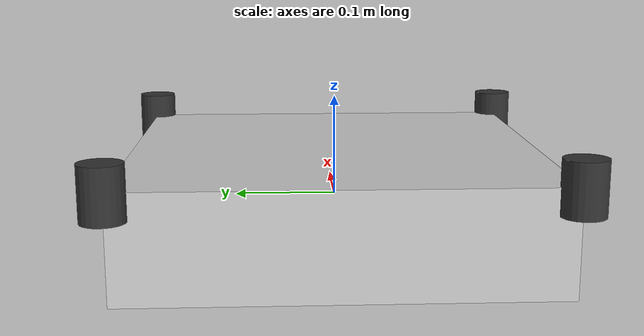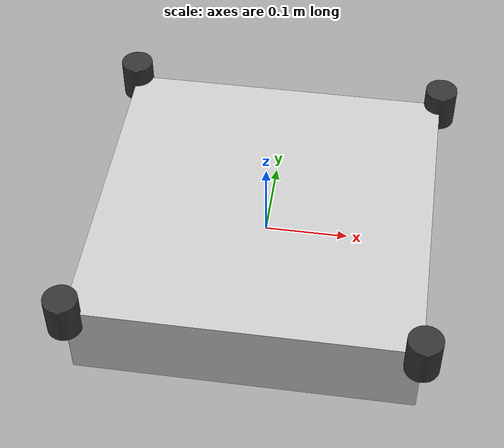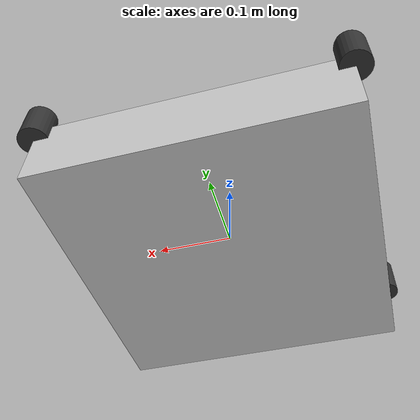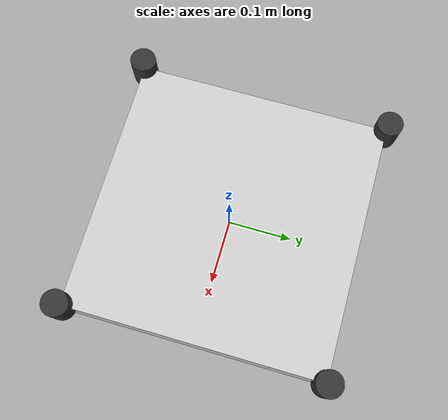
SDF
<?xml version="1.0"?>
<sdf version="1.6">
  <model name="quadcopter">
    <link name="base_link">
      <pose>0 0 0 0 0 0</pose>
      <inertial>
        <mass>1.5</mass>
        <inertia>
          <ixx>0.029125</ixx>
          <ixy>0</ixy>
          <ixz>0</ixz>
          <iyy>0.029125</iyy>
          <iyz>0</iyz>
          <izz>0.055225</izz>
        </inertia>
      </inertial>
      <collision name="collision">
        <geometry>
          <box>
            <size>0.4 0.4 0.1</size>
          </box>
        </geometry>
      </collision>
      <visual name="visual">
        <geometry>
          <box>
            <size>0.4 0.4 0.1</size>
          </box>
        </geometry>
        <material>
          <ambient>0.8 0.8 0.8 1</ambient>
          <diffuse>0.8 0.8 0.8 1</diffuse>
        </material>
      </visual>
    </link>

    <!-- Front Left Motor -->
    <link name="motor_fl">
      <pose>0.2 0.2 0.05 0 0 0</pose>
      <inertial>
        <mass>0.1</mass>
        <inertia>
          <ixx>0.001</ixx>
          <ixy>0</ixy>
          <ixz>0</ixz>
          <iyy>0.001</iyy>
          <iyz>0</iyz>
          <izz>0.001</izz>
        </inertia>
      </inertial>
      <collision name="collision">
        <geometry>
          <cylinder>
            <radius>0.02</radius>
            <length>0.05</length>
          </cylinder>
        </geometry>
      </collision>
      <visual name="visual">
        <geometry>
          <cylinder>
            <radius>0.02</radius>
            <length>0.05</length>
          </cylinder>
        </geometry>
        <material>
          <ambient>0.2 0.2 0.2 1</ambient>
          <diffuse>0.2 0.2 0.2 1</diffuse>
        </material>
      </visual>
    </link>

    <!-- Front Right Motor -->
    <link name="motor_fr">
      <pose>-0.2 0.2 0.05 0 0 0</pose>
      <inertial>
        <mass>0.1</mass>
        <inertia>
          <ixx>0.001</ixx>
          <ixy>0</ixy>
          <ixz>0</ixz>
          <iyy>0.001</iyy>
          <iyz>0</iyz>
          <izz>0.001</izz>
        </inertia>
      </inertial>
      <collision name="collision">
        <geometry>
          <cylinder>
            <radius>0.02</radius>
            <length>0.05</length>
          </cylinder>
        </geometry>
      </collision>
      <visual name="visual">
        <geometry>
          <cylinder>
            <radius>0.02</radius>
            <length>0.05</length>
          </cylinder>
        </geometry>
        <material>
          <ambient>0.2 0.2 0.2 1</ambient>
          <diffuse>0.2 0.2 0.2 1</diffuse>
        </material>
      </visual>
    </link>

    <!-- Rear Left Motor -->
    <link name="motor_rl">
      <pose>0.2 -0.2 0.05 0 0 0</pose>
      <inertial>
        <mass>0.1</mass>
        <inertia>
          <ixx>0.001</ixx>
          <ixy>0</ixy>
          <ixz>0</ixz>
          <iyy>0.001</iyy>
          <iyz>0</iyz>
          <izz>0.001</izz>
        </inertia>
      </inertial>
      <collision name="collision">
        <geometry>
          <cylinder>
            <radius>0.02</radius>
            <length>0.05</length>
          </cylinder>
        </geometry>
      </collision>
      <visual name="visual">
        <geometry>
          <cylinder>
            <radius>0.02</radius>
            <length>0.05</length>
          </cylinder>
        </geometry>
        <material>
          <ambient>0.2 0.2 0.2 1</ambient>
          <diffuse>0.2 0.2 0.2 1</diffuse>
        </material>
      </visual>
    </link>

    <!-- Rear Right Motor -->
    <link name="motor_rr">
      <pose>-0.2 -0.2 0.05 0 0 0</pose>
      <inertial>
        <mass>0.1</mass>
        <inertia>
          <ixx>0.001</ixx>
          <ixy>0</ixy>
          <ixz>0</ixz>
          <iyy>0.001</iyy>
          <iyz>0</iyz>
          <izz>0.001</izz>
        </inertia>
      </inertial>
      <collision name="collision">
        <geometry>
          <cylinder>
            <radius>0.02</radius>
            <length>0.05</length>
          </cylinder>
        </geometry>
      </collision>
      <visual name="visual">
        <geometry>
          <cylinder>
            <radius>0.02</radius>
            <length>0.05</length>
          </cylinder>
        </geometry>
        <material>
          <ambient>0.2 0.2 0.2 1</ambient>
          <diffuse>0.2 0.2 0.2 1</diffuse>
        </material>
      </visual>
    </link>

    <!-- IMU Sensor -->
    <link name="imu_link">
      <pose>0 0 0.05 0 0 0</pose>
      <sensor name="imu_sensor" type="imu">
        <always_on>true</always_on>
        <update_rate>100</update_rate>
        <visualize>true</visualize>
        <topic>quadcopter/sensors/imu</topic>
        <frame_name>imu_link</frame_name>
        <ros>
          <namespace>/quadcopter</namespace>
          <remapping>sensors/imu:=sensors/imu</remapping>
        </ros>
      </sensor>
    </link>

    <!-- GPS Sensor -->
    <link name="gps_link">
      <pose>0 0 0.05 0 0 0</pose>
      <sensor name="gps_sensor" type="gps">
        <always_on>true</always_on>
        <update_rate>10</update_rate>
        <visualize>true</visualize>
        <topic>quadcopter/sensors/gps</topic>
        <frame_name>gps_link</frame_name>
        <ros>
          <namespace>/quadcopter</namespace>
          <remapping>sensors/gps:=sensors/gps</remapping>
        </ros>
      </sensor>
    </link>

    <!-- Altitude Sensor -->
    <link name="altitude_link">
      <pose>0 0 -0.05 0 0 0</pose>
      <sensor name="altitude_sensor" type="ray">
        <always_on>true</always_on>
        <update_rate>50</update_rate>
        <visualize>true</visualize>
        <topic>quadcopter/sensors/altitude</topic>
        <frame_name>altitude_link</frame_name>
        <ray>
          <scan>
            <horizontal>
              <samples>1</samples>
              <resolution>1</resolution>
              <min_angle>0</min_angle>
              <max_angle>0</max_angle>
            </horizontal>
          </scan>
          <range>
            <min>0.1</min>
            <max>50</max>
            <resolution>0.01</resolution>
          </range>
        </ray>
        <ros>
          <namespace>/quadcopter</namespace>
          <remapping>sensors/altitude:=sensors/altitude</remapping>
        </ros>
      </sensor>
    </link>

    <!-- Joints -->
    <joint name="motor_fl_joint" type="revolute">
      <parent>base_link</parent>
      <child>motor_fl</child>
      <axis>
        <xyz>0 0 1</xyz>
      </axis>
    </joint>

    <joint name="motor_fr_joint" type="revolute">
      <parent>base_link</parent>
      <child>motor_fr</child>
      <axis>
        <xyz>0 0 1</xyz>
      </axis>
    </joint>

    <joint name="motor_rl_joint" type="revolute">
      <parent>base_link</parent>
      <child>motor_rl</child>
      <axis>
        <xyz>0 0 1</xyz>
      </axis>
    </joint>

    <joint name="motor_rr_joint" type="revolute">
      <parent>base_link</parent>
      <child>motor_rr</child>
      <axis>
        <xyz>0 0 1</xyz>
      </axis>
    </joint>

    <joint name="imu_joint" type="fixed">
      <parent>base_link</parent>
      <child>imu_link</child>
    </joint>

    <joint name="gps_joint" type="fixed">
      <parent>base_link</parent>
      <child>gps_link</child>
    </joint>

    <joint name="altitude_joint" type="fixed">
      <parent>base_link</parent>
      <child>altitude_link</child>
    </joint>

    <!-- Plugin for quadcopter dynamics -->
    <plugin name="quadcopter_plugin" filename="libgazebo_ros_planar_move.so">
      <commandTopic>quadcopter/control/velocity</commandTopic>
      <odometryTopic>quadcopter/state/odometry</odometryTopic>
      <odometryFrame>odom</odometryFrame>
      <odometryRate>20</odometryRate>
      <robotBaseFrame>base_link</robotBaseFrame>
    </plugin>

    <!-- Plugin for motor control -->
    <plugin name="motor_controller" filename="libgazebo_ros_force.so">
      <bodyName>base_link</bodyName>
      <topicName>quadcopter/control/motors</topicName>
    </plugin>
  </model>
</sdf>
